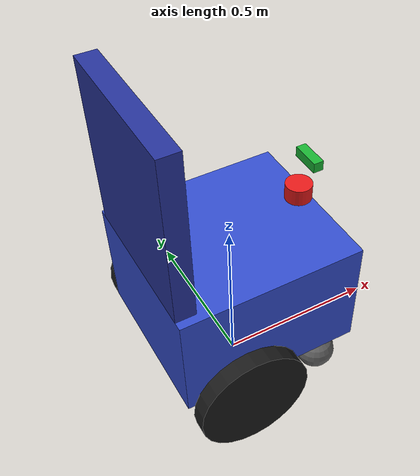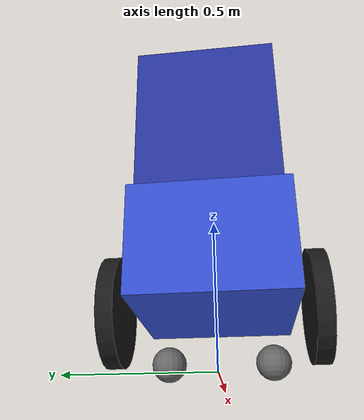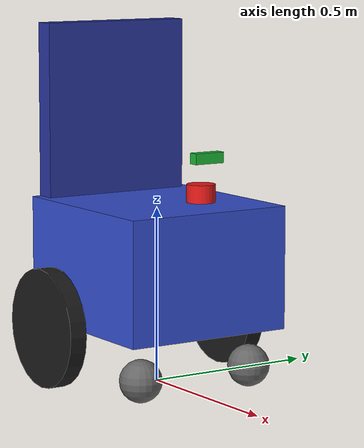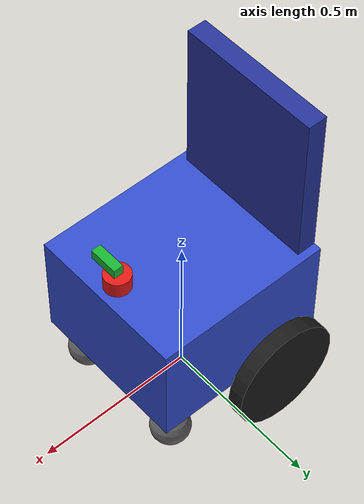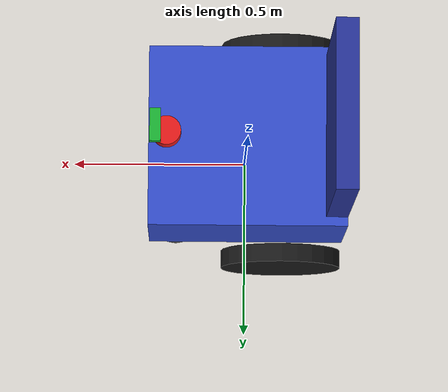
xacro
<?xml version="1.0"?>
<!-- Gazebo Fortress (gz-sim 6) 対応版 -->
<robot xmlns:xacro="http://www.ros.org/wiki/xacro" name="wheelchair">

  <!-- ===== パラメータ ===== -->
  <xacro:property name="body_x" value="0.55"/>   <!-- 前後長 -->
  <xacro:property name="body_y" value="0.50"/>
  <xacro:property name="body_z" value="0.35"/>   <!-- 高さ -->
  <xacro:property name="body_mass" value="40.0"/>
  <xacro:property name="wheel_radius" value="0.17"/>
  <xacro:property name="wheel_width" value="0.05"/>
  <xacro:property name="wheel_mass" value="3.0"/>
  <!-- カメラの付け方(xacro 引数。既定は従来どおり) -->
  <xacro:arg name="camera_z" default="0.50"/>      <!-- base_link からの高さ [m] (従来 body_z+0.15) -->
  <xacro:arg name="camera_pitch" default="0.0"/>   <!-- 上下の向き [rad] (負で上向き) -->
  <xacro:arg name="camera_hfov" default="1.36"/>   <!-- 水平画角 [rad] -->
  <xacro:property name="wheel_sep" value="0.60"/>
  <xacro:property name="caster_radius" value="0.06"/>

  <!-- ===== 慣性マクロ ===== -->
  <xacro:macro name="box_inertia" params="m x y z">
    <inertial>
      <mass value="${m}"/>
      <inertia ixx="${m*(y*y+z*z)/12}" iyy="${m*(x*x+z*z)/12}" izz="${m*(x*x+y*y)/12}"
               ixy="0" ixz="0" iyz="0"/>
    </inertial>
  </xacro:macro>
  <xacro:macro name="cylinder_inertia" params="m r h">
    <inertial>
      <mass value="${m}"/>
      <inertia ixx="${m*(3*r*r+h*h)/12}" iyy="${m*(3*r*r+h*h)/12}" izz="${m*r*r/2}"
               ixy="0" ixz="0" iyz="0"/>
    </inertial>
  </xacro:macro>
  <xacro:macro name="sphere_inertia" params="m r">
    <inertial>
      <mass value="${m}"/>
      <inertia ixx="${2*m*r*r/5}" iyy="${2*m*r*r/5}" izz="${2*m*r*r/5}"
               ixy="0" ixz="0" iyz="0"/>
    </inertial>
  </xacro:macro>

  <!-- ===== 本体 ===== -->
  <link name="base_footprint"/>

  <joint name="base_joint" type="fixed">
    <parent link="base_footprint"/>
    <child link="base_link"/>
    <origin xyz="0 0 ${wheel_radius}" rpy="0 0 0"/>
  </joint>

  <link name="base_link">
    <visual>
      <origin xyz="0 0 ${body_z/2}" rpy="0 0 0"/>
      <geometry><box size="${body_x} ${body_y} ${body_z}"/></geometry>
      <material name="blue"><color rgba="0.2 0.3 0.8 1"/></material>
    </visual>
    <collision>
      <origin xyz="0 0 ${body_z/2}" rpy="0 0 0"/>
      <geometry><box size="${body_x} ${body_y} ${body_z}"/></geometry>
    </collision>
    <xacro:box_inertia m="${body_mass}" x="${body_x}" y="${body_y}" z="${body_z}"/>
  </link>

  <!-- 背もたれ(見た目のみ) -->
  <joint name="backrest_joint" type="fixed">
    <parent link="base_link"/>
    <child link="backrest_link"/>
    <origin xyz="${-body_x/2+0.03} 0 ${body_z+0.25}" rpy="0 0 0"/>
  </joint>
  <link name="backrest_link">
    <visual>
      <geometry><box size="0.06 ${body_y*0.9} 0.5"/></geometry>
      <material name="darkblue"><color rgba="0.15 0.2 0.6 1"/></material>
    </visual>
    <xacro:box_inertia m="1.0" x="0.06" y="${body_y*0.9}" z="0.5"/>
  </link>

  <!-- ===== 駆動輪(左右) ===== -->
  <xacro:macro name="drive_wheel" params="prefix y_pos">
    <joint name="${prefix}_wheel_joint" type="continuous">
      <parent link="base_link"/>
      <child link="${prefix}_wheel_link"/>
      <origin xyz="-0.1 ${y_pos} 0" rpy="${-pi/2} 0 0"/>
      <axis xyz="0 0 1"/>
    </joint>
    <link name="${prefix}_wheel_link">
      <visual>
        <geometry><cylinder radius="${wheel_radius}" length="${wheel_width}"/></geometry>
        <material name="black"><color rgba="0.1 0.1 0.1 1"/></material>
      </visual>
      <collision>
        <geometry><cylinder radius="${wheel_radius}" length="${wheel_width}"/></geometry>
      </collision>
      <xacro:cylinder_inertia m="${wheel_mass}" r="${wheel_radius}" h="${wheel_width}"/>
    </link>
    <gazebo reference="${prefix}_wheel_link">
      <mu1>1.0</mu1>
      <mu2>1.0</mu2>
    </gazebo>
  </xacro:macro>
  <xacro:drive_wheel prefix="left"  y_pos="${wheel_sep/2}"/>
  <xacro:drive_wheel prefix="right" y_pos="${-wheel_sep/2}"/>

  <!-- ===== 前キャスタ(左右) ===== -->
  <xacro:macro name="caster" params="prefix y_pos">
    <joint name="${prefix}_caster_joint" type="fixed">
      <parent link="base_link"/>
      <child link="${prefix}_caster_link"/>
      <origin xyz="0.2 ${y_pos} ${-wheel_radius+caster_radius}" rpy="0 0 0"/>
    </joint>
    <link name="${prefix}_caster_link">
      <visual>
        <geometry><sphere radius="${caster_radius}"/></geometry>
        <material name="grey"><color rgba="0.4 0.4 0.4 1"/></material>
      </visual>
      <collision>
        <geometry><sphere radius="${caster_radius}"/></geometry>
      </collision>
      <xacro:sphere_inertia m="0.5" r="${caster_radius}"/>
    </link>
    <gazebo reference="${prefix}_caster_link">
      <mu1>0.0</mu1>
      <mu2>0.0</mu2>
    </gazebo>
  </xacro:macro>
  <xacro:caster prefix="front_left"  y_pos="0.18"/>
  <xacro:caster prefix="front_right" y_pos="-0.18"/>

  <!-- ===== 2D LiDAR ===== -->
  <joint name="lidar_joint" type="fixed">
    <parent link="base_link"/>
    <child link="lidar_link"/>
    <origin xyz="${body_x/2-0.05} 0 ${body_z+0.05}" rpy="0 0 0"/>
  </joint>
  <link name="lidar_link">
    <visual>
      <geometry><cylinder radius="0.04" length="0.05"/></geometry>
      <material name="red"><color rgba="0.9 0.1 0.1 1"/></material>
    </visual>
    <collision>
      <geometry><cylinder radius="0.04" length="0.05"/></geometry>
    </collision>
    <xacro:cylinder_inertia m="0.2" r="0.04" h="0.05"/>
  </link>

  <gazebo reference="lidar_link">
    <sensor name="lidar_sensor" type="gpu_lidar">
      <topic>scan</topic>
      <update_rate>10</update_rate>
      <ignition_frame_id>lidar_link</ignition_frame_id>
      <lidar>
        <scan>
          <horizontal>
            <samples>360</samples>
            <resolution>1</resolution>
            <min_angle>${-pi}</min_angle>
            <max_angle>${pi}</max_angle>
          </horizontal>
        </scan>
        <range>
          <min>0.20</min>
          <max>10.0</max>
          <resolution>0.01</resolution>
        </range>
      </lidar>
      <always_on>true</always_on>
      <visualize>true</visualize>
    </sensor>
  </gazebo>

  <!-- ===== RGB-Dカメラ ===== -->
  <joint name="camera_joint" type="fixed">
    <parent link="base_link"/>
    <child link="camera_link"/>
    <origin xyz="${body_x/2-0.02} 0 $(arg camera_z)" rpy="0 $(arg camera_pitch) 0"/>
  </joint>
  <link name="camera_link">
    <visual>
      <geometry><box size="0.03 0.09 0.03"/></geometry>
      <material name="green"><color rgba="0.1 0.7 0.2 1"/></material>
    </visual>
    <collision>
      <geometry><box size="0.03 0.09 0.03"/></geometry>
    </collision>
    <xacro:box_inertia m="0.1" x="0.03" y="0.09" z="0.03"/>
  </link>

  <!-- 光学フレーム(REP103: z前方→カメラ光学系の座標に変換) -->
  <joint name="camera_optical_joint" type="fixed">
    <parent link="camera_link"/>
    <child link="camera_link_optical"/>
    <origin xyz="0 0 0" rpy="${-pi/2} 0 ${-pi/2}"/>
  </joint>
  <link name="camera_link_optical"/>

  <gazebo reference="camera_link">
    <sensor name="camera" type="rgbd_camera">
      <topic>camera</topic>
      <update_rate>10</update_rate>
      <ignition_frame_id>camera_link_optical</ignition_frame_id>
      <camera>
        <horizontal_fov>$(arg camera_hfov)</horizontal_fov>
        <image>
          <width>640</width>
          <height>480</height>
        </image>
        <clip>
          <near>0.1</near>
          <far>10.0</far>
        </clip>
      </camera>
      <always_on>true</always_on>
    </sensor>
  </gazebo>

  <!-- ===== 差動駆動プラグイン (gz-sim) ===== -->
  <gazebo>
    <plugin filename="ignition-gazebo-diff-drive-system"
            name="ignition::gazebo::systems::DiffDrive">
      <left_joint>left_wheel_joint</left_joint>
      <right_joint>right_wheel_joint</right_joint>
      <wheel_separation>${wheel_sep}</wheel_separation>
      <wheel_radius>${wheel_radius}</wheel_radius>
      <topic>cmd_vel</topic>
      <odom_topic>odom</odom_topic>
      <tf_topic>tf</tf_topic>
      <frame_id>odom</frame_id>
      <child_frame_id>base_footprint</child_frame_id>
      <odom_publish_frequency>30</odom_publish_frequency>
      <max_linear_acceleration>1.5</max_linear_acceleration>
      <max_angular_acceleration>3.0</max_angular_acceleration>
    </plugin>
  </gazebo>

  <!-- ===== 真値オドメトリ(計測用・2026-08-21追加) =====
       personモデルと同じOdometryPublisherで、ワールド座標の実位置を
       /model/wheelchair/odometry に配信する。車輪odomのドリフトに影響されない
       評価(metrics_logger)のための追加で、走行制御には使わない -->
  <gazebo>
    <plugin filename="ignition-gazebo-odometry-publisher-system"
            name="ignition::gazebo::systems::OdometryPublisher">
      <odom_publish_frequency>20</odom_publish_frequency>
    </plugin>
  </gazebo>

</robot>
